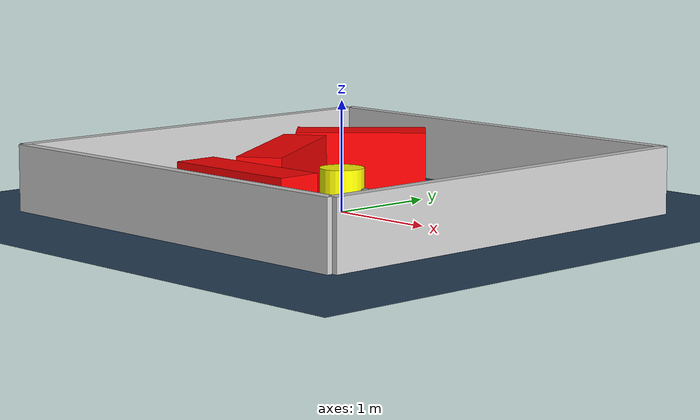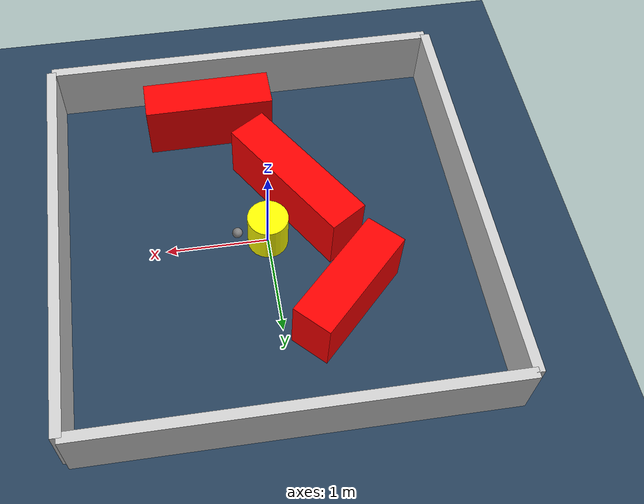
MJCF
<?xml version="1.0" ?>
<mujoco model="generated_environment">
  <option timestep="0.01" integrator="RK4" cone="elliptic"/>
  <default>
    <geom density="1"/>
  </default>
  <asset>
    <texture builtin="gradient" height="3072" rgb1="0.3 0.5 0.7" rgb2="0 0 0" type="skybox" width="512"/>
    <texture builtin="checker" height="300" mark="edge" markrgb="0.8 0.8 0.8" name="groundplane" rgb1="0.2 0.3 0.4" rgb2="0.1 0.2 0.3" type="2d" width="300"/>
    <material name="groundplane" reflectance="0.2" texrepeat="5 5" texture="groundplane" texuniform="true"/>
    <material name="robot" rgba="0.0 1.0 0.0 1"/>
  </asset>
  <worldbody>
    <light dir="0 0 -1" directional="true" pos="0 0 1.5"/>
    <geom condim="4" friction="1.0 0.005 0.001" material="groundplane" name="floor" size="0 0 0.05" type="plane"/>
    <body name="walls">
      <geom name="wall_1" condim="4" pos="-2.0 0.0 0.3" rgba="0.800000011920929 0.800000011920929 0.800000011920929 1.0" size="0.05 2.0 0.3" type="box"/>
      <geom name="wall_2" condim="4" pos="2.0 0.0 0.3" rgba="0.800000011920929 0.800000011920929 0.800000011920929 1.0" size="0.05 2.0 0.3" type="box"/>
      <geom name="wall_3" condim="4" pos="0.0 -2.0 0.3" rgba="0.800000011920929 0.800000011920929 0.800000011920929 1.0" size="2.0 0.05 0.3" type="box"/>
      <geom name="wall_4" condim="4" pos="0.0 2.0 0.3" rgba="0.800000011920929 0.800000011920929 0.800000011920929 1.0" size="2.0 0.05 0.3" type="box"/>
    </body>
    <body name="robot">
      <joint name="joint_x" type="slide" pos="0 0 0" axis="1 0 0"/>
      <joint name="joint_y" type="slide" pos="0 0 0" axis="0 1 0"/>
      <geom name="robot" type="sphere" pos="0.3 0.0 0.2" size="0.05" mass="5." friction="1.0 0.005 0.0001" condim="4" rgba="0.5 0.5 0.5 1.0"/>
      <site name="sensor_ball"/>
    </body>
    <body name="obstacle_movable_1">
      <geom name="obstacle_movable_1" condim="4" pos="0.0 0.0 0.2" euler="0 0 0.0" friction="1.0 0.005 0.001" rgba="1.0 1.0 0.0 1.0" size="0.2 0.2 0.0" type="cylinder" mass="0.1"/>
      <joint type="free"/>
    </body>
    <body name="obstacle_2_static">
      <geom name="obstacle_2_static" condim="4" pos="-0.6234391959184153 0.8359666373032699 0.3" euler="0 0 44.90010106622925" friction="1.0 0.005 0.001" rgba="1 0 0 1" size="0.5989804524339304 0.2 0.3" type="box"/>
    </body>
    <body name="obstacle_3_static">
      <geom name="obstacle_3_static" condim="4" pos="0.4158000795100487 -1.48345921475072 0.3" euler="0 0 0.6226077084558757" friction="1.0 0.005 0.001" rgba="1 0 0 1" size="0.6450101933964503 0.2 0.3" type="box"/>
    </body>
    <body name="obstacle_4_static">
      <geom name="obstacle_4_static" condim="4" pos="-0.3346279312936371 -0.40166131966667784 0.3" euler="0 0 302.23246686531115" friction="1.0 0.005 0.001" rgba="1 0 0 1" size="0.7507774145687124 0.2 0.3" type="box"/>
    </body>
  </worldbody>
  <actuator>
    <motor name="actuator_x" joint="joint_x" gear="1" ctrlrange="-1 1"/>
    <motor name="actuator_y" joint="joint_y" gear="1" ctrlrange="-1 1"/>
  </actuator>
</mujoco>
